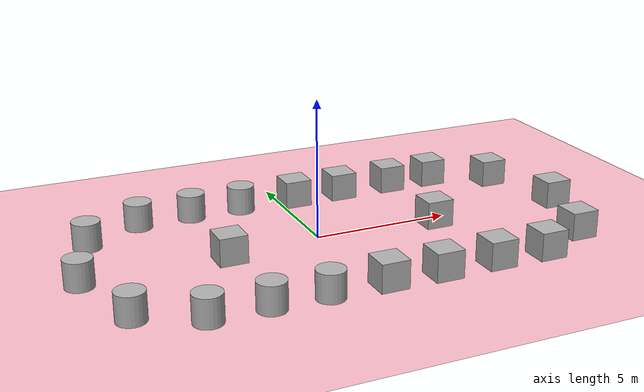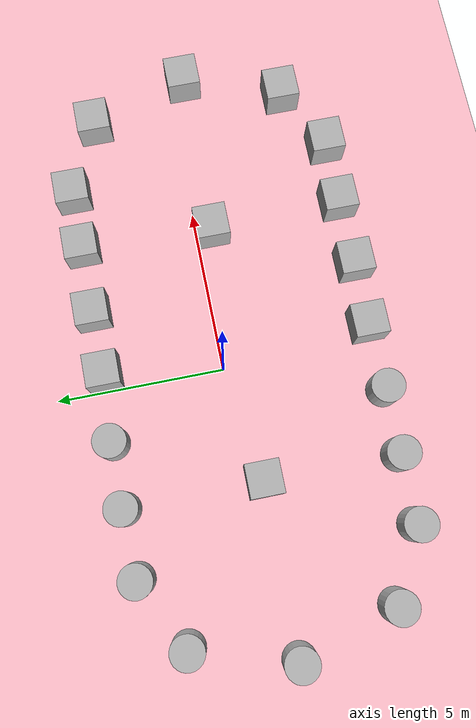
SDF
<sdf version='1.9'>
  <world name='empty'>
    <physics name='1ms' type='ignored'>
      <max_step_size>0.01</max_step_size>
      <real_time_factor>1</real_time_factor>
      <real_time_update_rate>1000</real_time_update_rate>
    </physics>
    <plugin name='ignition::gazebo::systems::Physics' filename='libignition-gazebo-physics-system.so'/>
    <plugin name='ignition::gazebo::systems::UserCommands' filename='libignition-gazebo-user-commands-system.so'/>
    <plugin name='ignition::gazebo::systems::SceneBroadcaster' filename='libignition-gazebo-scene-broadcaster-system.so'/>
    <plugin name='ignition::gazebo::systems::Imu' filename='libignition-gazebo-imu-system.so'/>
    <plugin name='ignition::gazebo::systems::Sensors' filename='ignition-gazebo-sensors-system'>
      <render_engine>ogre2</render_engine>
    </plugin>
    <scene>
      <ambient>0.4 0.4 0.4 1</ambient>
      <background>0.7 0.7 0.7 1</background>
      <shadows>true</shadows>
    </scene>
    <gravity>0 0 -9.8</gravity>
    <magnetic_field>6e-06 2.3e-05 -4.2e-05</magnetic_field>
    <atmosphere type='adiabatic'/>
    <model name='ground_plane'>
      <static>true</static>
      <link name='link'>
        <collision name='collision'>
          <geometry>
            <plane>
              <normal>0 0 1</normal>
              <size>100 100</size>
            </plane>
          </geometry>
          <surface>
            <friction>
              <ode/>
            </friction>
            <bounce/>
            <contact/>
          </surface>
        </collision>
        <visual name='visual'>
          <geometry>
            <plane>
              <normal>0 0 1</normal>
              <size>100 100</size>
            </plane>
          </geometry>
          <material>
            <ambient>1 0.75 0.8 1</ambient>
            <diffuse>1 0.75 0.8 1</diffuse>
            <specular>0.8 0.8 0.8 1</specular>
          </material>
        </visual>
        <pose>0 0 0 0 -0 0</pose>
        <inertial>
          <pose>0 0 0 0 -0 0</pose>
          <mass>1</mass>
          <inertia>
            <ixx>1</ixx>
            <ixy>0</ixy>
            <ixz>0</ixz>
            <iyy>1</iyy>
            <iyz>0</iyz>
            <izz>1</izz>
          </inertia>
        </inertial>
        <enable_wind>false</enable_wind>
      </link>
      <pose>0 0 0 0 -0 0</pose>
      <self_collide>false</self_collide>
    </model>
    <model name='box'>
      <pose>9.43117 -0.517328 0.5 0 -0 0</pose>
      <link name='box_link'>
        <inertial>
          <inertia>
            <ixx>0.16666</ixx>
            <ixy>0</ixy>
            <ixz>0</ixz>
            <iyy>0.16666</iyy>
            <iyz>0</iyz>
            <izz>0.16666</izz>
          </inertia>
          <mass>1</mass>
          <pose>0 0 0 0 -0 0</pose>
        </inertial>
        <collision name='box_collision'>
          <geometry>
            <box>
              <size>1 1 1</size>
            </box>
          </geometry>
          <surface>
            <friction>
              <ode/>
            </friction>
            <bounce/>
            <contact/>
          </surface>
        </collision>
        <visual name='box_visual'>
          <geometry>
            <box>
              <size>1 1 1</size>
            </box>
          </geometry>
          <material>
            <ambient>0.3 0.3 0.3 1</ambient>
            <diffuse>0.7 0.7 0.7 1</diffuse>
            <specular>1 1 1 1</specular>
          </material>
        </visual>
        <pose>0 0 0 0 -0 0</pose>
        <enable_wind>false</enable_wind>
      </link>
      <static>false</static>
      <self_collide>false</self_collide>
    </model>
    <model name='box_0'>
      <pose>6.30125 3.50212 0.5 0 -0 0</pose>
      <link name='box_link'>
        <inertial>
          <inertia>
            <ixx>0.16666</ixx>
            <ixy>0</ixy>
            <ixz>0</ixz>
            <iyy>0.16666</iyy>
            <iyz>0</iyz>
            <izz>0.16666</izz>
          </inertia>
          <mass>1</mass>
          <pose>0 0 0 0 -0 0</pose>
        </inertial>
        <collision name='box_collision'>
          <geometry>
            <box>
              <size>1 1 1</size>
            </box>
          </geometry>
          <surface>
            <friction>
              <ode/>
            </friction>
            <bounce/>
            <contact/>
          </surface>
        </collision>
        <visual name='box_visual'>
          <geometry>
            <box>
              <size>1 1 1</size>
            </box>
          </geometry>
          <material>
            <ambient>0.3 0.3 0.3 1</ambient>
            <diffuse>0.7 0.7 0.7 1</diffuse>
            <specular>1 1 1 1</specular>
          </material>
        </visual>
        <pose>0 0 0 0 -0 0</pose>
        <enable_wind>false</enable_wind>
      </link>
      <static>false</static>
      <self_collide>false</self_collide>
    </model>
    <model name='box_1'>
      <pose>6.45213 -4.50561 0.5 0 -0 0</pose>
      <link name='box_link'>
        <inertial>
          <inertia>
            <ixx>0.16666</ixx>
            <ixy>0</ixy>
            <ixz>0</ixz>
            <iyy>0.16666</iyy>
            <iyz>0</iyz>
            <izz>0.16666</izz>
          </inertia>
          <mass>1</mass>
          <pose>0 0 0 0 -0 0</pose>
        </inertial>
        <collision name='box_collision'>
          <geometry>
            <box>
              <size>1 1 1</size>
            </box>
          </geometry>
          <surface>
            <friction>
              <ode/>
            </friction>
            <bounce/>
            <contact/>
          </surface>
        </collision>
        <visual name='box_visual'>
          <geometry>
            <box>
              <size>1 1 1</size>
            </box>
          </geometry>
          <material>
            <ambient>0.3 0.3 0.3 1</ambient>
            <diffuse>0.7 0.7 0.7 1</diffuse>
            <specular>1 1 1 1</specular>
          </material>
        </visual>
        <pose>0 0 0 0 -0 0</pose>
        <enable_wind>false</enable_wind>
      </link>
      <static>false</static>
      <self_collide>false</self_collide>
    </model>
    <model name='box_2'>
      <pose>2.43285 3.51037 0.5 0 -0 0</pose>
      <link name='box_link'>
        <inertial>
          <inertia>
            <ixx>0.16666</ixx>
            <ixy>0</ixy>
            <ixz>0</ixz>
            <iyy>0.16666</iyy>
            <iyz>0</iyz>
            <izz>0.16666</izz>
          </inertia>
          <mass>1</mass>
          <pose>0 0 0 0 -0 0</pose>
        </inertial>
        <collision name='box_collision'>
          <geometry>
            <box>
              <size>1 1 1</size>
            </box>
          </geometry>
          <surface>
            <friction>
              <ode/>
            </friction>
            <bounce/>
            <contact/>
          </surface>
        </collision>
        <visual name='box_visual'>
          <geometry>
            <box>
              <size>1 1 1</size>
            </box>
          </geometry>
          <material>
            <ambient>0.3 0.3 0.3 1</ambient>
            <diffuse>0.7 0.7 0.7 1</diffuse>
            <specular>1 1 1 1</specular>
          </material>
        </visual>
        <pose>0 0 0 0 -0 0</pose>
        <enable_wind>false</enable_wind>
      </link>
      <static>false</static>
      <self_collide>false</self_collide>
    </model>
    <model name='box_3'>
      <pose>2.45923 -4.51492 0.5 0 -0 0</pose>
      <link name='box_link'>
        <inertial>
          <inertia>
            <ixx>0.16666</ixx>
            <ixy>0</ixy>
            <ixz>0</ixz>
            <iyy>0.16666</iyy>
            <iyz>0</iyz>
            <izz>0.16666</izz>
          </inertia>
          <mass>1</mass>
          <pose>0 0 0 0 -0 0</pose>
        </inertial>
        <collision name='box_collision'>
          <geometry>
            <box>
              <size>1 1 1</size>
            </box>
          </geometry>
          <surface>
            <friction>
              <ode/>
            </friction>
            <bounce/>
            <contact/>
          </surface>
        </collision>
        <visual name='box_visual'>
          <geometry>
            <box>
              <size>1 1 1</size>
            </box>
          </geometry>
          <material>
            <ambient>0.3 0.3 0.3 1</ambient>
            <diffuse>0.7 0.7 0.7 1</diffuse>
            <specular>1 1 1 1</specular>
          </material>
        </visual>
        <pose>0 0 0 0 -0 0</pose>
        <enable_wind>false</enable_wind>
      </link>
      <static>false</static>
      <self_collide>false</self_collide>
    </model>
    <model name='cylinder'>
      <pose>-1.55164 3.58324 0.5 0 -0 0</pose>
      <link name='cylinder_link'>
        <inertial>
          <inertia>
            <ixx>0.14580000000000001</ixx>
            <ixy>0</ixy>
            <ixz>0</ixz>
            <iyy>0.14580000000000001</iyy>
            <iyz>0</iyz>
            <izz>0.125</izz>
          </inertia>
          <mass>1</mass>
          <pose>0 0 0 0 -0 0</pose>
        </inertial>
        <collision name='cylinder_collision'>
          <geometry>
            <cylinder>
              <radius>0.5</radius>
              <length>1</length>
            </cylinder>
          </geometry>
          <surface>
            <friction>
              <ode/>
            </friction>
            <bounce/>
            <contact/>
          </surface>
        </collision>
        <visual name='cylinder_visual'>
          <geometry>
            <cylinder>
              <radius>0.5</radius>
              <length>1</length>
            </cylinder>
          </geometry>
          <material>
            <ambient>0.3 0.3 0.3 1</ambient>
            <diffuse>0.7 0.7 0.7 1</diffuse>
            <specular>1 1 1 1</specular>
          </material>
        </visual>
        <pose>0 0 0 0 -0 0</pose>
        <enable_wind>false</enable_wind>
      </link>
      <static>false</static>
      <self_collide>false</self_collide>
    </model>
    <model name='cylinder_0'>
      <pose>-1.53569 -4.53076 0.5 0 -0 0</pose>
      <link name='cylinder_link'>
        <inertial>
          <inertia>
            <ixx>0.14580000000000001</ixx>
            <ixy>0</ixy>
            <ixz>0</ixz>
            <iyy>0.14580000000000001</iyy>
            <iyz>0</iyz>
            <izz>0.125</izz>
          </inertia>
          <mass>1</mass>
          <pose>0 0 0 0 -0 0</pose>
        </inertial>
        <collision name='cylinder_collision'>
          <geometry>
            <cylinder>
              <radius>0.5</radius>
              <length>1</length>
            </cylinder>
          </geometry>
          <surface>
            <friction>
              <ode/>
            </friction>
            <bounce/>
            <contact/>
          </surface>
        </collision>
        <visual name='cylinder_visual'>
          <geometry>
            <cylinder>
              <radius>0.5</radius>
              <length>1</length>
            </cylinder>
          </geometry>
          <material>
            <ambient>0.3 0.3 0.3 1</ambient>
            <diffuse>0.7 0.7 0.7 1</diffuse>
            <specular>1 1 1 1</specular>
          </material>
        </visual>
        <pose>0 0 0 0 -0 0</pose>
        <enable_wind>false</enable_wind>
      </link>
      <static>false</static>
      <self_collide>false</self_collide>
    </model>
    <model name='cylinder_1'>
      <pose>-5.4654 3.51346 0.5 0 -0 0</pose>
      <link name='cylinder_link'>
        <inertial>
          <inertia>
            <ixx>0.14580000000000001</ixx>
            <ixy>0</ixy>
            <ixz>0</ixz>
            <iyy>0.14580000000000001</iyy>
            <iyz>0</iyz>
            <izz>0.125</izz>
          </inertia>
          <mass>1</mass>
          <pose>0 0 0 0 -0 0</pose>
        </inertial>
        <collision name='cylinder_collision'>
          <geometry>
            <cylinder>
              <radius>0.5</radius>
              <length>1</length>
            </cylinder>
          </geometry>
          <surface>
            <friction>
              <ode/>
            </friction>
            <bounce/>
            <contact/>
          </surface>
        </collision>
        <visual name='cylinder_visual'>
          <geometry>
            <cylinder>
              <radius>0.5</radius>
              <length>1</length>
            </cylinder>
          </geometry>
          <material>
            <ambient>0.3 0.3 0.3 1</ambient>
            <diffuse>0.7 0.7 0.7 1</diffuse>
            <specular>1 1 1 1</specular>
          </material>
        </visual>
        <pose>0 0 0 0 -0 0</pose>
        <enable_wind>false</enable_wind>
      </link>
      <static>false</static>
      <self_collide>false</self_collide>
    </model>
    <model name='cylinder_2'>
      <pose>-5.49582 -4.51043 0.5 0 -0 0</pose>
      <link name='cylinder_link'>
        <inertial>
          <inertia>
            <ixx>0.14580000000000001</ixx>
            <ixy>0</ixy>
            <ixz>0</ixz>
            <iyy>0.14580000000000001</iyy>
            <iyz>0</iyz>
            <izz>0.125</izz>
          </inertia>
          <mass>1</mass>
          <pose>0 0 0 0 -0 0</pose>
        </inertial>
        <collision name='cylinder_collision'>
          <geometry>
            <cylinder>
              <radius>0.5</radius>
              <length>1</length>
            </cylinder>
          </geometry>
          <surface>
            <friction>
              <ode/>
            </friction>
            <bounce/>
            <contact/>
          </surface>
        </collision>
        <visual name='cylinder_visual'>
          <geometry>
            <cylinder>
              <radius>0.5</radius>
              <length>1</length>
            </cylinder>
          </geometry>
          <material>
            <ambient>0.3 0.3 0.3 1</ambient>
            <diffuse>0.7 0.7 0.7 1</diffuse>
            <specular>1 1 1 1</specular>
          </material>
        </visual>
        <pose>0 0 0 0 -0 0</pose>
        <enable_wind>false</enable_wind>
      </link>
      <static>false</static>
      <self_collide>false</self_collide>
    </model>
    <model name='cylinder_3'>
      <pose>-8.43805 -0.500293 0.5 0 -0 0</pose>
      <link name='cylinder_link'>
        <inertial>
          <inertia>
            <ixx>0.14580000000000001</ixx>
            <ixy>0</ixy>
            <ixz>0</ixz>
            <iyy>0.14580000000000001</iyy>
            <iyz>0</iyz>
            <izz>0.125</izz>
          </inertia>
          <mass>1</mass>
          <pose>0 0 0 0 -0 0</pose>
        </inertial>
        <collision name='cylinder_collision'>
          <geometry>
            <cylinder>
              <radius>0.5</radius>
              <length>1</length>
            </cylinder>
          </geometry>
          <surface>
            <friction>
              <ode/>
            </friction>
            <bounce/>
            <contact/>
          </surface>
        </collision>
        <visual name='cylinder_visual'>
          <geometry>
            <cylinder>
              <radius>0.5</radius>
              <length>1</length>
            </cylinder>
          </geometry>
          <material>
            <ambient>0.3 0.3 0.3 1</ambient>
            <diffuse>0.7 0.7 0.7 1</diffuse>
            <specular>1 1 1 1</specular>
          </material>
        </visual>
        <pose>0 0 0 0 -0 0</pose>
        <enable_wind>false</enable_wind>
      </link>
      <static>false</static>
      <self_collide>false</self_collide>
    </model>
    <model name='box_4'>
      <pose>8.48196 2.48695 0.5 0 -0 0</pose>
      <link name='box_link'>
        <inertial>
          <inertia>
            <ixx>0.16666</ixx>
            <ixy>0</ixy>
            <ixz>0</ixz>
            <iyy>0.16666</iyy>
            <iyz>0</iyz>
            <izz>0.16666</izz>
          </inertia>
          <mass>1</mass>
          <pose>0 0 0 0 -0 0</pose>
        </inertial>
        <collision name='box_collision'>
          <geometry>
            <box>
              <size>1 1 1</size>
            </box>
          </geometry>
          <surface>
            <friction>
              <ode/>
            </friction>
            <bounce/>
            <contact/>
          </surface>
        </collision>
        <visual name='box_visual'>
          <geometry>
            <box>
              <size>1 1 1</size>
            </box>
          </geometry>
          <material>
            <ambient>0.3 0.3 0.3 1</ambient>
            <diffuse>0.7 0.7 0.7 1</diffuse>
            <specular>1 1 1 1</specular>
          </material>
        </visual>
        <pose>0 0 0 0 -0 0</pose>
        <enable_wind>false</enable_wind>
      </link>
      <static>false</static>
      <self_collide>false</self_collide>
    </model>
    <model name='box_5'>
      <pose>8.44259 -3.48286 0.5 0 -0 0</pose>
      <link name='box_link'>
        <inertial>
          <inertia>
            <ixx>0.16666</ixx>
            <ixy>0</ixy>
            <ixz>0</ixz>
            <iyy>0.16666</iyy>
            <iyz>0</iyz>
            <izz>0.16666</izz>
          </inertia>
          <mass>1</mass>
          <pose>0 0 0 0 -0 0</pose>
        </inertial>
        <collision name='box_collision'>
          <geometry>
            <box>
              <size>1 1 1</size>
            </box>
          </geometry>
          <surface>
            <friction>
              <ode/>
            </friction>
            <bounce/>
            <contact/>
          </surface>
        </collision>
        <visual name='box_visual'>
          <geometry>
            <box>
              <size>1 1 1</size>
            </box>
          </geometry>
          <material>
            <ambient>0.3 0.3 0.3 1</ambient>
            <diffuse>0.7 0.7 0.7 1</diffuse>
            <specular>1 1 1 1</specular>
          </material>
        </visual>
        <pose>0 0 0 0 -0 0</pose>
        <enable_wind>false</enable_wind>
      </link>
      <static>false</static>
      <self_collide>false</self_collide>
    </model>
    <model name='box_6'>
      <pose>4.50945 3.50733 0.5 0 -0 0</pose>
      <link name='box_link'>
        <inertial>
          <inertia>
            <ixx>0.16666</ixx>
            <ixy>0</ixy>
            <ixz>0</ixz>
            <iyy>0.16666</iyy>
            <iyz>0</iyz>
            <izz>0.16666</izz>
          </inertia>
          <mass>1</mass>
          <pose>0 0 0 0 -0 0</pose>
        </inertial>
        <collision name='box_collision'>
          <geometry>
            <box>
              <size>1 1 1</size>
            </box>
          </geometry>
          <surface>
            <friction>
              <ode/>
            </friction>
            <bounce/>
            <contact/>
          </surface>
        </collision>
        <visual name='box_visual'>
          <geometry>
            <box>
              <size>1 1 1</size>
            </box>
          </geometry>
          <material>
            <ambient>0.3 0.3 0.3 1</ambient>
            <diffuse>0.7 0.7 0.7 1</diffuse>
            <specular>1 1 1 1</specular>
          </material>
        </visual>
        <pose>0 0 0 0 -0 0</pose>
        <enable_wind>false</enable_wind>
      </link>
      <static>false</static>
      <self_collide>false</self_collide>
    </model>
    <model name='box_7'>
      <pose>4.50262 -4.47873 0.5 0 -0 0</pose>
      <link name='box_link'>
        <inertial>
          <inertia>
            <ixx>0.16666</ixx>
            <ixy>0</ixy>
            <ixz>0</ixz>
            <iyy>0.16666</iyy>
            <iyz>0</iyz>
            <izz>0.16666</izz>
          </inertia>
          <mass>1</mass>
          <pose>0 0 0 0 -0 0</pose>
        </inertial>
        <collision name='box_collision'>
          <geometry>
            <box>
              <size>1 1 1</size>
            </box>
          </geometry>
          <surface>
            <friction>
              <ode/>
            </friction>
            <bounce/>
            <contact/>
          </surface>
        </collision>
        <visual name='box_visual'>
          <geometry>
            <box>
              <size>1 1 1</size>
            </box>
          </geometry>
          <material>
            <ambient>0.3 0.3 0.3 1</ambient>
            <diffuse>0.7 0.7 0.7 1</diffuse>
            <specular>1 1 1 1</specular>
          </material>
        </visual>
        <pose>0 0 0 0 -0 0</pose>
        <enable_wind>false</enable_wind>
      </link>
      <static>false</static>
      <self_collide>false</self_collide>
    </model>
    <model name='box_8'>
      <pose>0.553468 3.49234 0.5 0 -0 0</pose>
      <link name='box_link'>
        <inertial>
          <inertia>
            <ixx>0.16666</ixx>
            <ixy>0</ixy>
            <ixz>0</ixz>
            <iyy>0.16666</iyy>
            <iyz>0</iyz>
            <izz>0.16666</izz>
          </inertia>
          <mass>1</mass>
          <pose>0 0 0 0 -0 0</pose>
        </inertial>
        <collision name='box_collision'>
          <geometry>
            <box>
              <size>1 1 1</size>
            </box>
          </geometry>
          <surface>
            <friction>
              <ode/>
            </friction>
            <bounce/>
            <contact/>
          </surface>
        </collision>
        <visual name='box_visual'>
          <geometry>
            <box>
              <size>1 1 1</size>
            </box>
          </geometry>
          <material>
            <ambient>0.3 0.3 0.3 1</ambient>
            <diffuse>0.7 0.7 0.7 1</diffuse>
            <specular>1 1 1 1</specular>
          </material>
        </visual>
        <pose>0 0 0 0 -0 0</pose>
        <enable_wind>false</enable_wind>
      </link>
      <static>false</static>
      <self_collide>false</self_collide>
    </model>
    <model name='box_9'>
      <pose>0.502472 -4.47715 0.5 0 -0 0</pose>
      <link name='box_link'>
        <inertial>
          <inertia>
            <ixx>0.16666</ixx>
            <ixy>0</ixy>
            <ixz>0</ixz>
            <iyy>0.16666</iyy>
            <iyz>0</iyz>
            <izz>0.16666</izz>
          </inertia>
          <mass>1</mass>
          <pose>0 0 0 0 -0 0</pose>
        </inertial>
        <collision name='box_collision'>
          <geometry>
            <box>
              <size>1 1 1</size>
            </box>
          </geometry>
          <surface>
            <friction>
              <ode/>
            </friction>
            <bounce/>
            <contact/>
          </surface>
        </collision>
        <visual name='box_visual'>
          <geometry>
            <box>
              <size>1 1 1</size>
            </box>
          </geometry>
          <material>
            <ambient>0.3 0.3 0.3 1</ambient>
            <diffuse>0.7 0.7 0.7 1</diffuse>
            <specular>1 1 1 1</specular>
          </material>
        </visual>
        <pose>0 0 0 0 -0 0</pose>
        <enable_wind>false</enable_wind>
      </link>
      <static>false</static>
      <self_collide>false</self_collide>
    </model>
    <model name='cylinder_4'>
      <pose>-3.47189 3.57925 0.5 0 -0 0</pose>
      <link name='cylinder_link'>
        <inertial>
          <inertia>
            <ixx>0.14580000000000001</ixx>
            <ixy>0</ixy>
            <ixz>0</ixz>
            <iyy>0.14580000000000001</iyy>
            <iyz>0</iyz>
            <izz>0.125</izz>
          </inertia>
          <mass>1</mass>
          <pose>0 0 0 0 -0 0</pose>
        </inertial>
        <collision name='cylinder_collision'>
          <geometry>
            <cylinder>
              <radius>0.5</radius>
              <length>1</length>
            </cylinder>
          </geometry>
          <surface>
            <friction>
              <ode/>
            </friction>
            <bounce/>
            <contact/>
          </surface>
        </collision>
        <visual name='cylinder_visual'>
          <geometry>
            <cylinder>
              <radius>0.5</radius>
              <length>1</length>
            </cylinder>
          </geometry>
          <material>
            <ambient>0.3 0.3 0.3 1</ambient>
            <diffuse>0.7 0.7 0.7 1</diffuse>
            <specular>1 1 1 1</specular>
          </material>
        </visual>
        <pose>0 0 0 0 -0 0</pose>
        <enable_wind>false</enable_wind>
      </link>
      <static>false</static>
      <self_collide>false</self_collide>
    </model>
    <model name='cylinder_5'>
      <pose>-3.47919 -4.51621 0.5 0 -0 0</pose>
      <link name='cylinder_link'>
        <inertial>
          <inertia>
            <ixx>0.14580000000000001</ixx>
            <ixy>0</ixy>
            <ixz>0</ixz>
            <iyy>0.14580000000000001</iyy>
            <iyz>0</iyz>
            <izz>0.125</izz>
          </inertia>
          <mass>1</mass>
          <pose>0 0 0 0 -0 0</pose>
        </inertial>
        <collision name='cylinder_collision'>
          <geometry>
            <cylinder>
              <radius>0.5</radius>
              <length>1</length>
            </cylinder>
          </geometry>
          <surface>
            <friction>
              <ode/>
            </friction>
            <bounce/>
            <contact/>
          </surface>
        </collision>
        <visual name='cylinder_visual'>
          <geometry>
            <cylinder>
              <radius>0.5</radius>
              <length>1</length>
            </cylinder>
          </geometry>
          <material>
            <ambient>0.3 0.3 0.3 1</ambient>
            <diffuse>0.7 0.7 0.7 1</diffuse>
            <specular>1 1 1 1</specular>
          </material>
        </visual>
        <pose>0 0 0 0 -0 0</pose>
        <enable_wind>false</enable_wind>
      </link>
      <static>false</static>
      <self_collide>false</self_collide>
    </model>
    <model name='cylinder_6'>
      <pose>-7.53868 2.45446 0.5 0 -0 0</pose>
      <link name='cylinder_link'>
        <inertial>
          <inertia>
            <ixx>0.14580000000000001</ixx>
            <ixy>0</ixy>
            <ixz>0</ixz>
            <iyy>0.14580000000000001</iyy>
            <iyz>0</iyz>
            <izz>0.125</izz>
          </inertia>
          <mass>1</mass>
          <pose>0 0 0 0 -0 0</pose>
        </inertial>
        <collision name='cylinder_collision'>
          <geometry>
            <cylinder>
              <radius>0.5</radius>
              <length>1</length>
            </cylinder>
          </geometry>
          <surface>
            <friction>
              <ode/>
            </friction>
            <bounce/>
            <contact/>
          </surface>
        </collision>
        <visual name='cylinder_visual'>
          <geometry>
            <cylinder>
              <radius>0.5</radius>
              <length>1</length>
            </cylinder>
          </geometry>
          <material>
            <ambient>0.3 0.3 0.3 1</ambient>
            <diffuse>0.7 0.7 0.7 1</diffuse>
            <specular>1 1 1 1</specular>
          </material>
        </visual>
        <pose>0 0 0 0 -0 0</pose>
        <enable_wind>false</enable_wind>
      </link>
      <static>false</static>
      <self_collide>false</self_collide>
    </model>
    <model name='cylinder_7'>
      <pose>-7.53689 -3.4559 0.5 0 -0 0</pose>
      <link name='cylinder_link'>
        <inertial>
          <inertia>
            <ixx>0.14580000000000001</ixx>
            <ixy>0</ixy>
            <ixz>0</ixz>
            <iyy>0.14580000000000001</iyy>
            <iyz>0</iyz>
            <izz>0.125</izz>
          </inertia>
          <mass>1</mass>
          <pose>0 0 0 0 -0 0</pose>
        </inertial>
        <collision name='cylinder_collision'>
          <geometry>
            <cylinder>
              <radius>0.5</radius>
              <length>1</length>
            </cylinder>
          </geometry>
          <surface>
            <friction>
              <ode/>
            </friction>
            <bounce/>
            <contact/>
          </surface>
        </collision>
        <visual name='cylinder_visual'>
          <geometry>
            <cylinder>
              <radius>0.5</radius>
              <length>1</length>
            </cylinder>
          </geometry>
          <material>
            <ambient>0.3 0.3 0.3 1</ambient>
            <diffuse>0.7 0.7 0.7 1</diffuse>
            <specular>1 1 1 1</specular>
          </material>
        </visual>
        <pose>0 0 0 0 -0 0</pose>
        <enable_wind>false</enable_wind>
      </link>
      <static>false</static>
      <self_collide>false</self_collide>
    </model>
    <model name='box_10'>
      <pose>4.37502 -0.488114 0.5 0 -0 0</pose>
      <link name='box_link'>
        <inertial>
          <inertia>
            <ixx>0.16666</ixx>
            <ixy>0</ixy>
            <ixz>0</ixz>
            <iyy>0.16666</iyy>
            <iyz>0</iyz>
            <izz>0.16666</izz>
          </inertia>
          <mass>1</mass>
          <pose>0 0 0 0 -0 0</pose>
        </inertial>
        <collision name='box_collision'>
          <geometry>
            <box>
              <size>1 1 1</size>
            </box>
          </geometry>
          <surface>
            <friction>
              <ode/>
            </friction>
            <bounce/>
            <contact/>
          </surface>
        </collision>
        <visual name='box_visual'>
          <geometry>
            <box>
              <size>1 1 1</size>
            </box>
          </geometry>
          <material>
            <ambient>0.3 0.3 0.3 1</ambient>
            <diffuse>0.7 0.7 0.7 1</diffuse>
            <specular>1 1 1 1</specular>
          </material>
        </visual>
        <pose>0 0 0 0 -0 0</pose>
        <enable_wind>false</enable_wind>
      </link>
      <static>false</static>
      <self_collide>false</self_collide>
    </model>
    <model name='box_11'>
      <pose>-3.4329 -0.514325 0.5 0 -0 0</pose>
      <link name='box_link'>
        <inertial>
          <inertia>
            <ixx>0.16666</ixx>
            <ixy>0</ixy>
            <ixz>0</ixz>
            <iyy>0.16666</iyy>
            <iyz>0</iyz>
            <izz>0.16666</izz>
          </inertia>
          <mass>1</mass>
          <pose>0 0 0 0 -0 0</pose>
        </inertial>
        <collision name='box_collision'>
          <geometry>
            <box>
              <size>1 1 1</size>
            </box>
          </geometry>
          <surface>
            <friction>
              <ode/>
            </friction>
            <bounce/>
            <contact/>
          </surface>
        </collision>
        <visual name='box_visual'>
          <geometry>
            <box>
              <size>1 1 1</size>
            </box>
          </geometry>
          <material>
            <ambient>0.3 0.3 0.3 1</ambient>
            <diffuse>0.7 0.7 0.7 1</diffuse>
            <specular>1 1 1 1</specular>
          </material>
        </visual>
        <pose>0 0 0 0 -0 0</pose>
        <enable_wind>false</enable_wind>
      </link>
      <static>false</static>
      <self_collide>false</self_collide>
    </model>
    <light name='sun' type='directional'>
      <pose>0 0 10 0 -0 0</pose>
      <cast_shadows>true</cast_shadows>
      <intensity>1</intensity>
      <direction>-0.5 0.1 -0.9</direction>
      <diffuse>0.8 0.8 0.8 1</diffuse>
      <specular>0.2 0.2 0.2 1</specular>
      <attenuation>
        <range>1000</range>
        <linear>0.01</linear>
        <constant>0.90000000000000002</constant>
        <quadratic>0.001</quadratic>
      </attenuation>
      <spot>
        <inner_angle>0</inner_angle>
        <outer_angle>0</outer_angle>
        <falloff>0</falloff>
      </spot>
    </light>
  </world>
</sdf>
